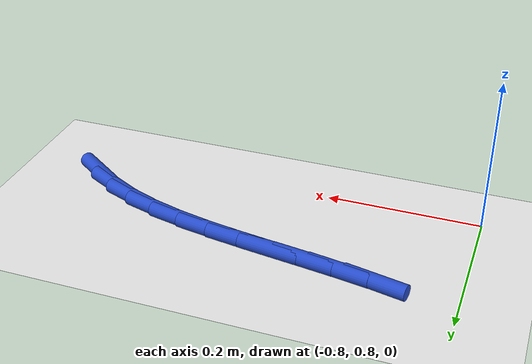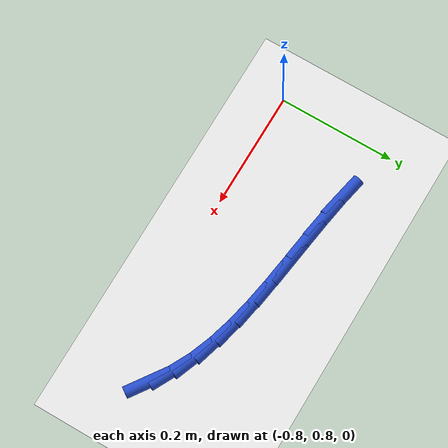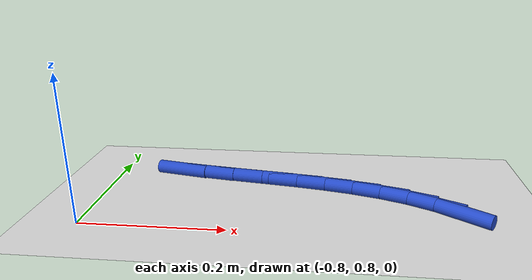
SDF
<sdf version="1.6">
 <world name="default">
  <model name="ground_plane">
   <static>1</static>
   <link name="link">
    <collision name="collision">
     <geometry><plane><normal>0 0 1</normal><size>100 100</size></plane></geometry>
     <surface><friction><ode><mu>100</mu><mu2>50</mu2></ode></friction></surface>
    </collision>
    <visual name="visual">
     <cast_shadows>0</cast_shadows>
     <geometry><plane><normal>0 0 1</normal><size>100 100</size></plane></geometry>
     <material>
      <script><uri>file://media/materials/scripts/gazebo.material</uri><name>Gazebo/WhiteGlow</name></script>
     </material>
    </visual>
   </link>
  </model>
  <model name="line">
   <link name="link_21">
    <pose>-0.2928147808939419 0.8562013288473824 0.01 0 1.57 -0.6059687174385548</pose>
    <collision name="collision">
     <geometry><cylinder><radius>0.01</radius><length>0.08</length></cylinder></geometry>
    </collision>
    <visual name="visual">
     <material>
      <script><name>Gazebo/Blue</name><uri>file://media/materials/scripts/gazebo.material</uri></script>
     </material>
     <geometry><cylinder><radius>0.01</radius><length>0.08</length></cylinder></geometry>
    </visual>
   </link>
   <link name="link_22">
    <pose>-0.3248725313810998 0.8784152717954565 0.01 0 1.57 -0.4747172335471271</pose>
    <collision name="collision">
     <geometry><cylinder><radius>0.01</radius><length>0.08</length></cylinder></geometry>
    </collision>
    <visual name="visual">
     <material>
      <script><name>Gazebo/Blue</name><uri>file://media/materials/scripts/gazebo.material</uri></script>
     </material>
     <geometry><cylinder><radius>0.01</radius><length>0.08</length></cylinder></geometry>
    </visual>
   </link>
   <link name="link_23">
    <pose>-0.35990910097877504 0.8964210769295646 0.01 0 1.57 -0.3648271021216497</pose>
    <collision name="collision">
     <geometry><cylinder><radius>0.01</radius><length>0.08</length></cylinder></geometry>
    </collision>
    <visual name="visual">
     <material>
      <script><name>Gazebo/Blue</name><uri>file://media/materials/scripts/gazebo.material</uri></script>
     </material>
     <geometry><cylinder><radius>0.01</radius><length>0.08</length></cylinder></geometry>
    </visual>
   </link>
   <link name="link_24">
    <pose>-0.3975750748693542 0.9108066136146813 0.01 0 1.57 -0.27880123905119975</pose>
    <collision name="collision">
     <geometry><cylinder><radius>0.01</radius><length>0.08</length></cylinder></geometry>
    </collision>
    <visual name="visual">
     <material>
      <script><name>Gazebo/Blue</name><uri>file://media/materials/scripts/gazebo.material</uri></script>
     </material>
     <geometry><cylinder><radius>0.01</radius><length>0.08</length></cylinder></geometry>
    </visual>
   </link>
   <link name="link_25">
    <pose>-0.43748032467524817 0.9222297662739143 0.01 0 1.57 -0.21501206148060215</pose>
    <collision name="collision">
     <geometry><cylinder><radius>0.01</radius><length>0.08</length></cylinder></geometry>
    </collision>
    <visual name="visual">
     <material>
      <script><name>Gazebo/Blue</name><uri>file://media/materials/scripts/gazebo.material</uri></script>
     </material>
     <geometry><cylinder><radius>0.01</radius><length>0.08</length></cylinder></geometry>
    </visual>
   </link>
   <link name="link_26">
    <pose>-0.4792347220188678 0.9313484193303705 0.01 0 1.57 -0.17121718909155448</pose>
    <collision name="collision">
     <geometry><cylinder><radius>0.01</radius><length>0.08</length></cylinder></geometry>
    </collision>
    <visual name="visual">
     <material>
      <script><name>Gazebo/Blue</name><uri>file://media/materials/scripts/gazebo.material</uri></script>
     </material>
     <geometry><cylinder><radius>0.01</radius><length>0.08</length></cylinder></geometry>
    </visual>
   </link>
   <link name="link_27">
    <pose>-0.5224481385226242 0.9388204572071572 0.01 0 1.57 -0.14537566169483054</pose>
    <collision name="collision">
     <geometry><cylinder><radius>0.01</radius><length>0.08</length></cylinder></geometry>
    </collision>
    <visual name="visual">
     <material>
      <script><name>Gazebo/Blue</name><uri>file://media/materials/scripts/gazebo.material</uri></script>
     </material>
     <geometry><cylinder><radius>0.01</radius><length>0.08</length></cylinder></geometry>
    </visual>
   </link>
   <link name="link_28">
    <pose>-0.5667304458089284 0.9453037643273818 0.01 0 1.57 -0.13599508970299026</pose>
    <collision name="collision">
     <geometry><cylinder><radius>0.01</radius><length>0.08</length></cylinder></geometry>
    </collision>
    <visual name="visual">
     <material>
      <script><name>Gazebo/Blue</name><uri>file://media/materials/scripts/gazebo.material</uri></script>
     </material>
     <geometry><cylinder><radius>0.01</radius><length>0.08</length></cylinder></geometry>
    </visual>
   </link>
   <link name="link_29">
    <pose>-0.6116915155001913 0.9514562251141516 0.01 0 1.57 -0.1422274362618129</pose>
    <collision name="collision">
     <geometry><cylinder><radius>0.01</radius><length>0.08</length></cylinder></geometry>
    </collision>
    <visual name="visual">
     <material>
      <script><name>Gazebo/Blue</name><uri>file://media/materials/scripts/gazebo.material</uri></script>
     </material>
     <geometry><cylinder><radius>0.01</radius><length>0.08</length></cylinder></geometry>
    </visual>
   </link>
   <link name="link_30">
    <pose>-0.6569412192188236 0.9579357239905739 0.01 0 1.57 -0.16384932030573837</pose>
    <collision name="collision">
     <geometry><cylinder><radius>0.01</radius><length>0.08</length></cylinder></geometry>
    </collision>
    <visual name="visual">
     <material>
      <script><name>Gazebo/Blue</name><uri>file://media/materials/scripts/gazebo.material</uri></script>
     </material>
     <geometry><cylinder><radius>0.01</radius><length>0.08</length></cylinder></geometry>
    </visual>
   </link>
   <link name="link_31">
    <pose>-0.702089428587237 0.9654001453797562 0.01 0 1.57 -0.20117469059565068</pose>
    <collision name="collision">
     <geometry><cylinder><radius>0.01</radius><length>0.08</length></cylinder></geometry>
    </collision>
    <visual name="visual">
     <material>
      <script><name>Gazebo/Blue</name><uri>file://media/materials/scripts/gazebo.material</uri></script>
     </material>
     <geometry><cylinder><radius>0.01</radius><length>0.08</length></cylinder></geometry>
    </visual>
   </link>
  </model>
 </world>
</sdf>
